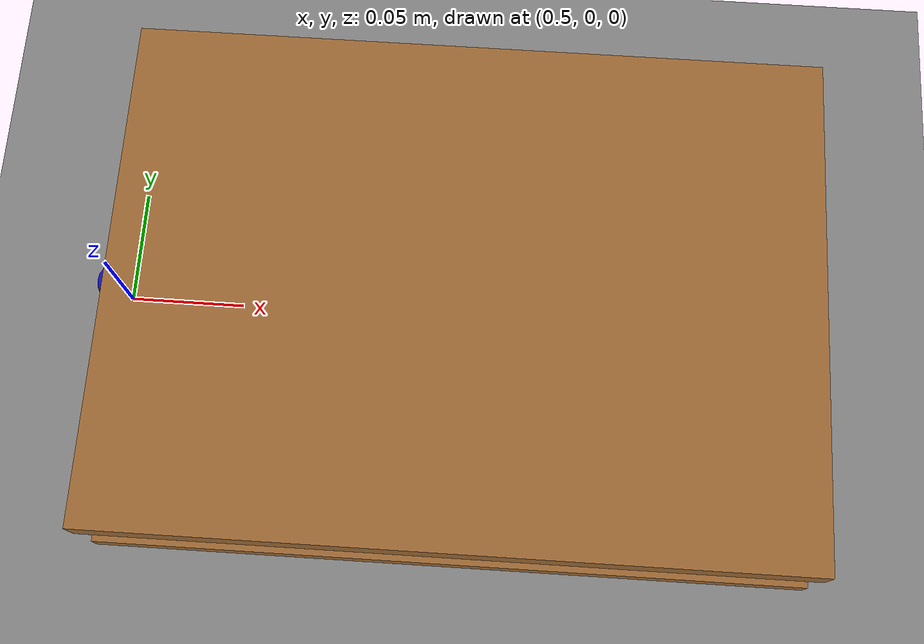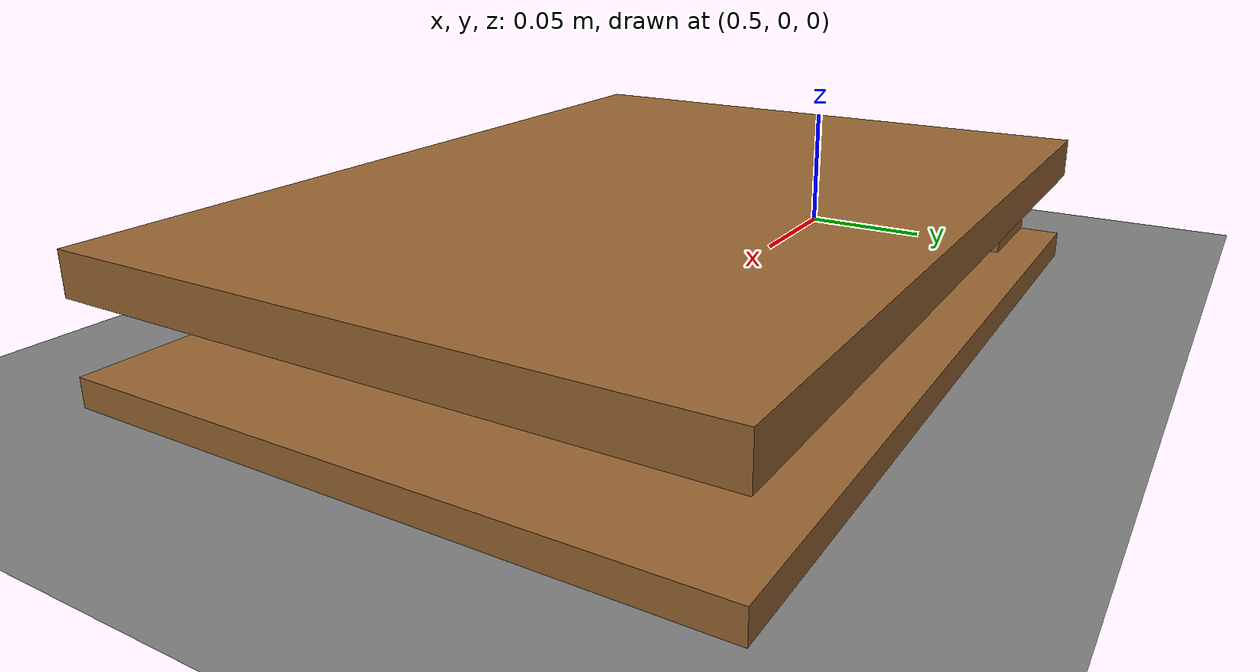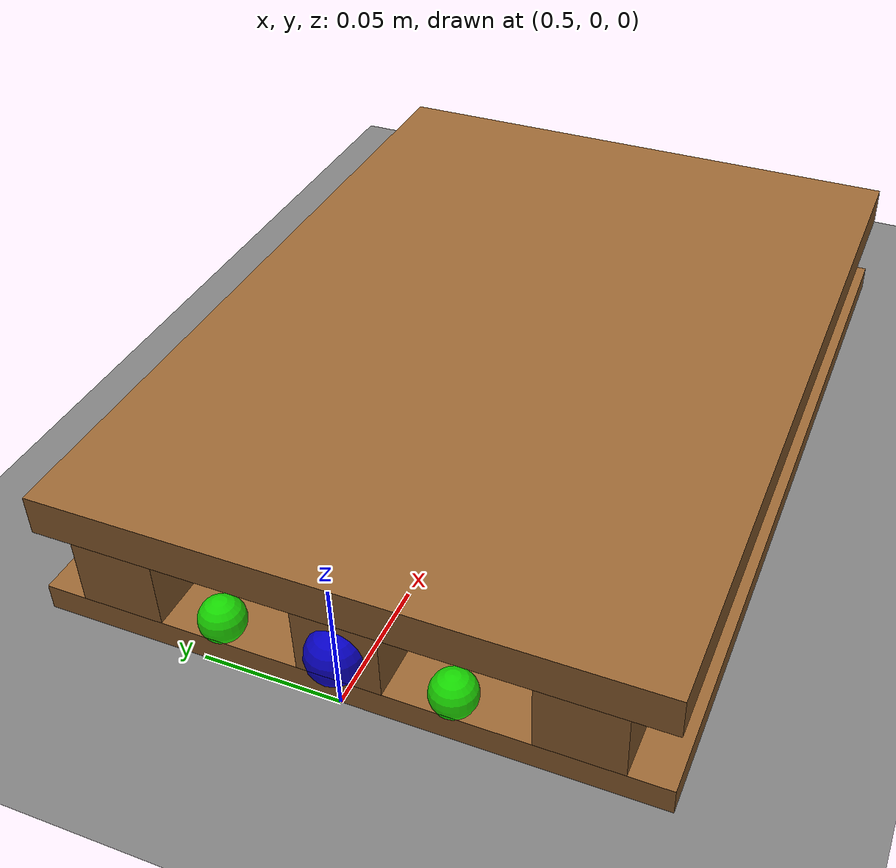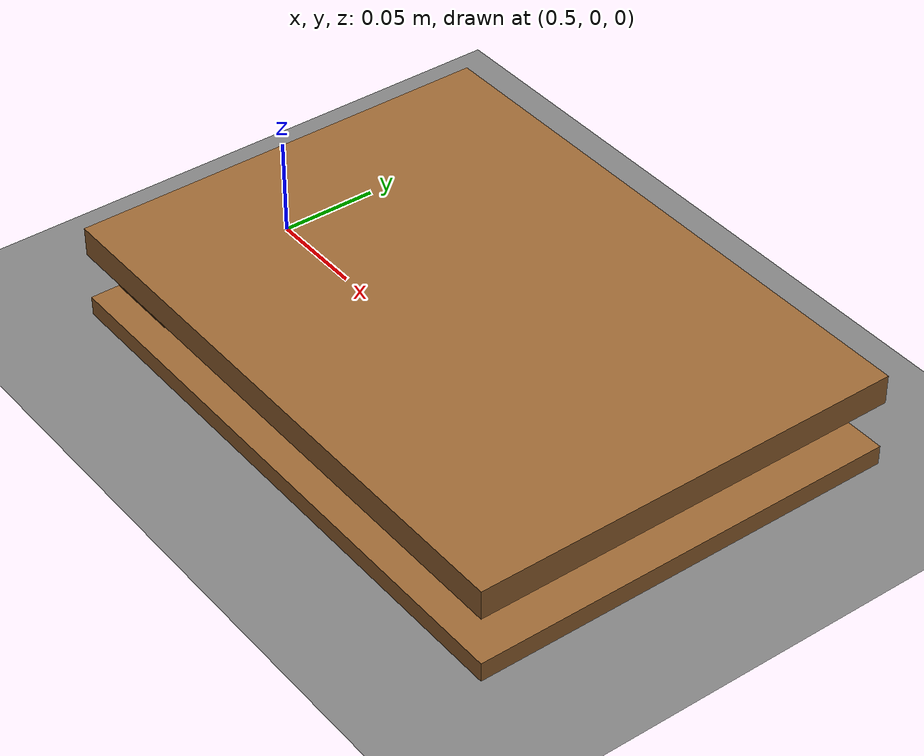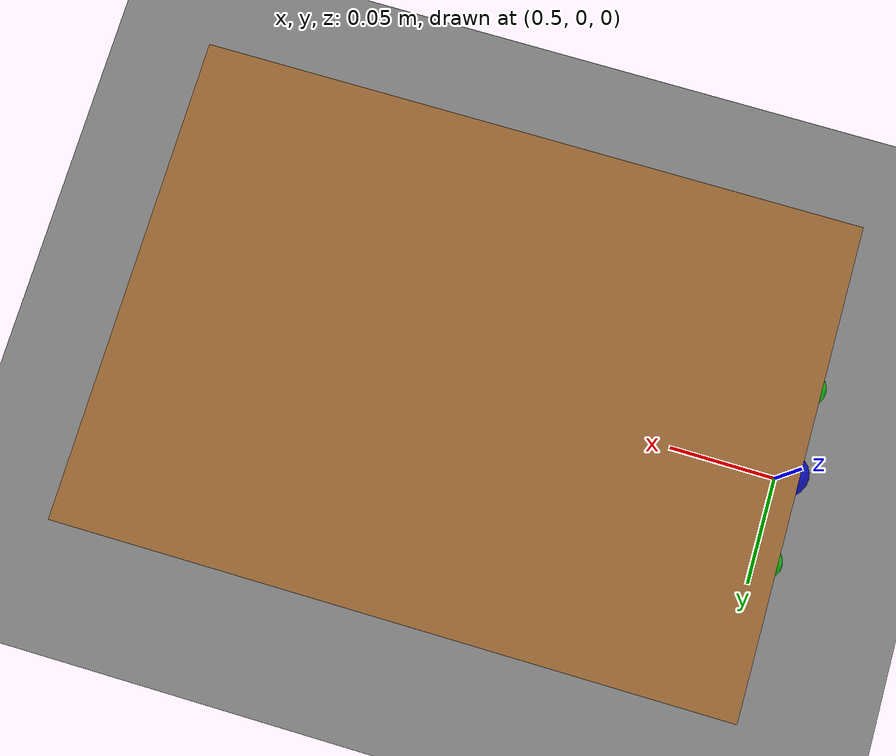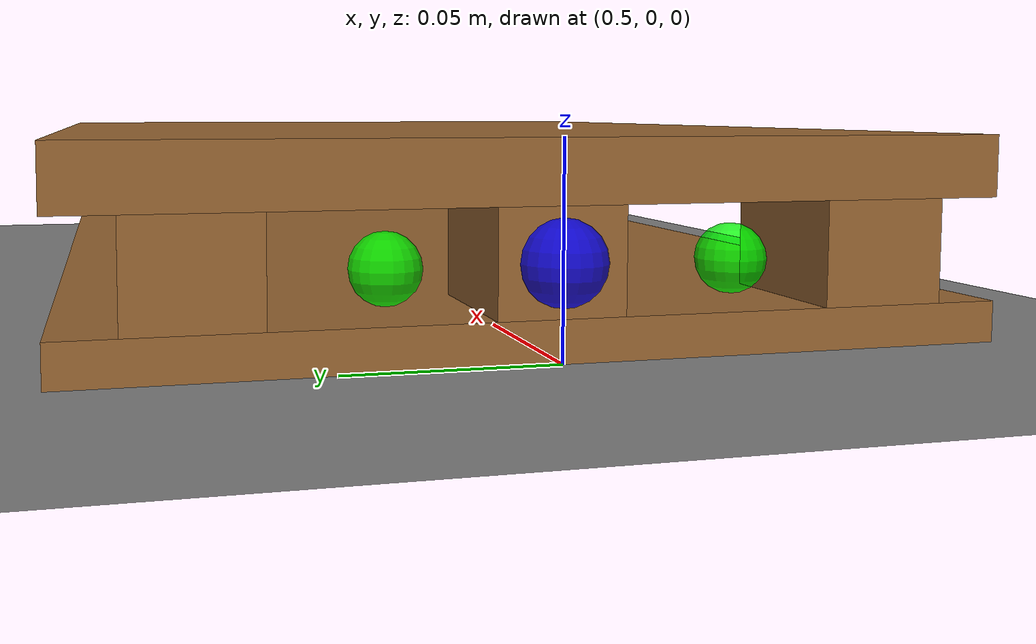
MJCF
<?xml version="1.0" encoding="utf-8"?>
<mujoco model="pallet">

  <option timestep="0.002" gravity="0 0 -9.81" integrator="RK4" cone="elliptic"/>

  <default>
    <geom condim="3" friction="0.6 0.01 0.01"
          solref="0.02 1" solimp="0.9 0.95 0.001"/>
  </default>

  <asset>
    <texture name="floor_tex" type="2d" builtin="checker"
             rgb1="0.6 0.6 0.6" rgb2="0.4 0.4 0.4" width="512" height="512"/>
    <material name="floor_mat"  texture="floor_tex" texrepeat="4 4"/>
    <material name="pallet_mat" rgba="0.6 0.4 0.2 1"/>  <!-- Wood brown -->
    <material name="slot_mat"   rgba="0.1 0.1 0.1 1"/>  <!-- Dark (visual only) -->
  </asset>

  <worldbody>
    <geom name="floor" type="plane" size="5 5 0.1" material="floor_mat"/>

    <!--
      Pallet root body.
      pos="1.0 0 0": placed 1m in front of forklift origin for Phase 2a.
      The forklift starts at origin facing +X, so pallet is directly ahead.
    -->
    <body name="pallet" pos="0.65 0 0">

      <!-- ── Bottom deck ── -->
      <geom name="bottom_deck" type="box" size="0.15 0.11 0.005"
        pos="0 0 0.005" material="pallet_mat" mass="0.5"/>

      <!-- ── Legs (4 blocks creating 2 fork slots) ── -->
      <!--
        Each leg: size X=0.15 (full depth), Y=0.015 (30mm), Z=0.0125 (25mm = slot height)
        Leg center Z = bottom_deck top + leg_half = 0.010 + 0.0125 = 0.0225m
      -->

      <!-- Left outer leg -->
      <geom name="leg_left_outer" type="box" size="0.02 0.015 0.0125"
        pos="-0.130 0.080 0.0225" material="pallet_mat" mass="0.1"/>

      <!-- Inner leg (between the two slots) -->
      <geom name="leg_inner" type="box" size="0.02 0.015 0.0125"
        pos="-0.130 0.0 0.0225" material="pallet_mat" mass="0.1"/>

      <!-- Right outer leg -->
      <geom name="leg_right_outer" type="box" size="0.02 0.015 0.0125"
        pos="-0.130 -0.080 0.0225" material="pallet_mat" mass="0.1"/>

      <!-- ── Top deck ── -->
      <!--
        Sits on top of the legs.
        Bottom face Z = 0.010 + 0.025 = 0.035m
        Center Z = 0.035 + 0.0075 = 0.0425m
      -->
      <geom name="top_deck" type="box" size="0.15 0.11 0.0075"
        pos="0 0 0.0425" material="pallet_mat" mass="0.5"/>

      <site name="left_slot_entry"  pos="-0.15  0.040 0.0225" size="0.008" rgba="0 1 0 0.8"/>
        <site name="right_slot_entry" pos="-0.15 -0.040 0.0225" size="0.008" rgba="0 1 0 0.8"/>
      <!--
        Midpoint between the two slot entries — used as the single target point
        in reward calculation (simpler than tracking both forks independently).
      -->
        <site name="slot_center"      pos="-0.15  0.000 0.0225" size="0.010" rgba="0 0 1 0.8"/>

    </body>

  </worldbody>

</mujoco>
